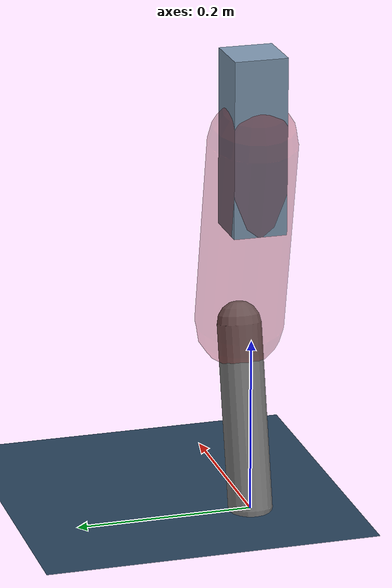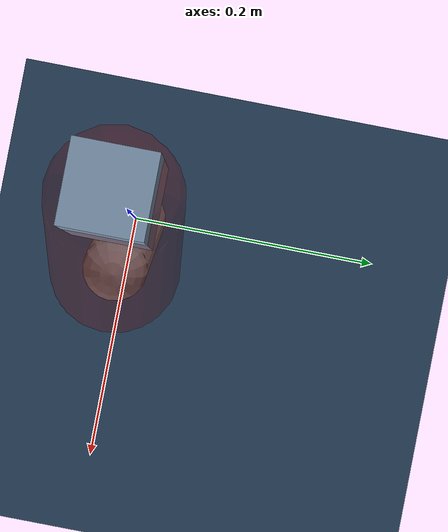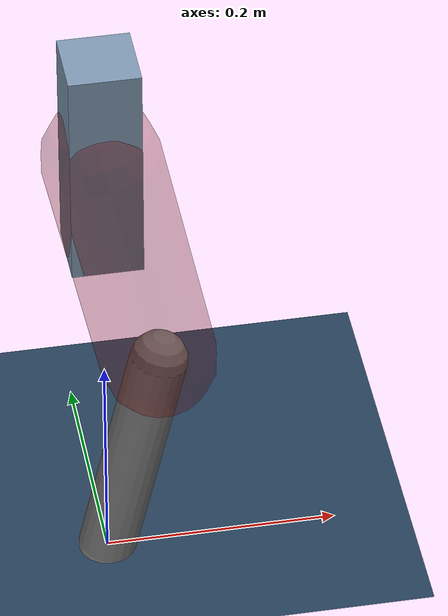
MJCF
<mujoco model="Hopper2D">
	<compiler inertiafromgeom="true" angle="radian" />
	<option timestep="0.001" integrator="implicit" cone="elliptic" solver="Newton" tolerance="1e-10" />

	<default>
		<geom contype="1" conaffinity="1" condim="3" friction="2 0.005 0.0001" solref="0.005 1" />
		<joint limited="true" damping="0.1" />
	</default>

	<asset>
		<texture name="skybox" type="skybox" builtin="gradient" rgb1=".4 .6 .8" rgb2="0 0 0" width="800" height="800" />
		<texture name="grid" type="2d" builtin="checker" rgb1=".1 .2 .3" rgb2=".2 .3 .4" width="300" height="300" mark="edge" markrgb=".2 .3 .4" />
		<material name="ground" texture="grid" texrepeat="1 1" texuniform="true" reflectance="0.1" />
		<material name="leg" rgba="0.5 0.6 0.7 1" />
	</asset>

	<worldbody>

		<geom name="floor" type="plane" size="5 5 0.25" material="ground" />

		<light directional="false" diffuse="0.8 0.8 0.8" specular="0.3 0.3 0.3" pos="0 0 2" dir="0 0 -1" />
		<light mode="targetbodycom" target="base" directional="false" diffuse="0.8 0.8 0.8" specular="0.3 0.3 0.3" pos="0 0 2" dir="0 0 -1" />

		<camera name="fixed" pos="0 -2 1" xyaxes="1 0 0 0 0 1" />
		<camera name="tracking" mode="trackcom" pos="0 -3 1" />

		<body name="root" pos="0 0 0.43099349419470545">
			<joint name="slide_x" type="slide" axis="1 0 0" range="-100 100" />
			<joint name="slide_z" type="slide" axis="0 0 1" range="0 10" />

			<body name="base" pos="0 0 0">
				<geom name="torso" type="box" size="0.03 0.03 0.1" mass="2.0060000000000002" material="leg" />

				<body name="link1" pos="0 0 0" euler="0 1.3669691613818924 0">
					<joint type="hinge" axis="0 -1 0" pos="0 0 0" name="hinge1" limited="true" range="-3.14 3.14" stiffness="0" damping="0.1" />
					<geom name="thigh" type="capsule" fromto="0 0 0 0.23041654775233822 0 0" size="0.05" rgba="0.5 0 0 0.3" mass="0.8060830241560794" />

					<body name="link2" pos="0.23041654775233822 0 0" euler="0 0.4271690306267291 0">
						<joint type="hinge" axis="0 -1 0" pos="0 0 0" name="hinge2" limited="true" range="-3.14 3.14" stiffness="0" damping="0.1" />
						<geom name="shank" type="capsule" fromto="0 0 0 0.2105769464423672 0 0" size="0.025" mass="0.4097615571538938" />

					</body>
				</body>
			</body>
		</body>
	</worldbody>

	<actuator>
		<motor name="torque1" joint="hinge1" ctrlrange="-56.94386376939513 56.94386376939513" ctrllimited="true" gear="1" />
		<motor name="torque2" joint="hinge2" ctrlrange="-102.21550344871206 102.21550344871206" ctrllimited="true" gear="1" />
	</actuator>
</mujoco>
